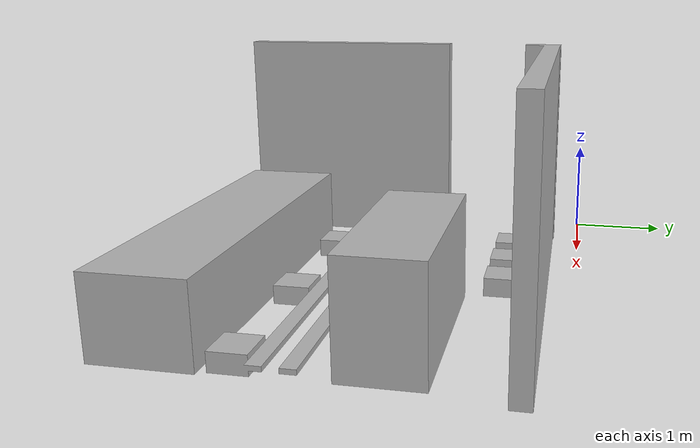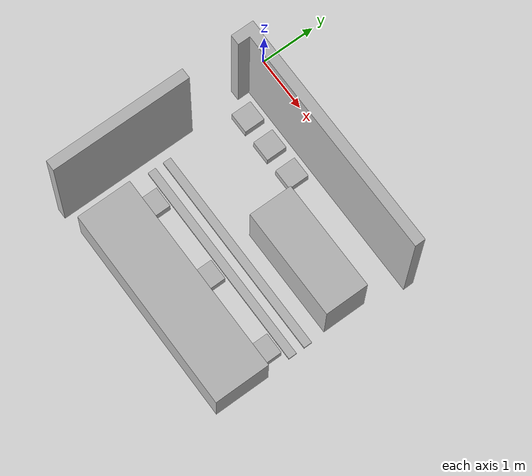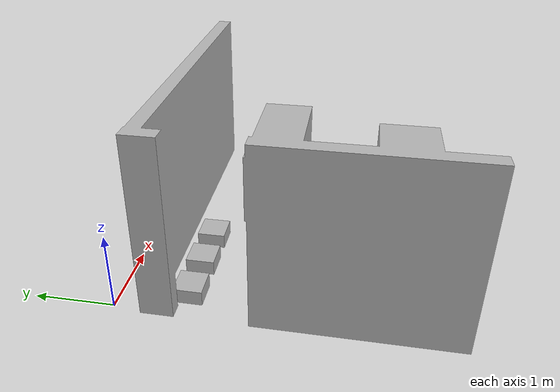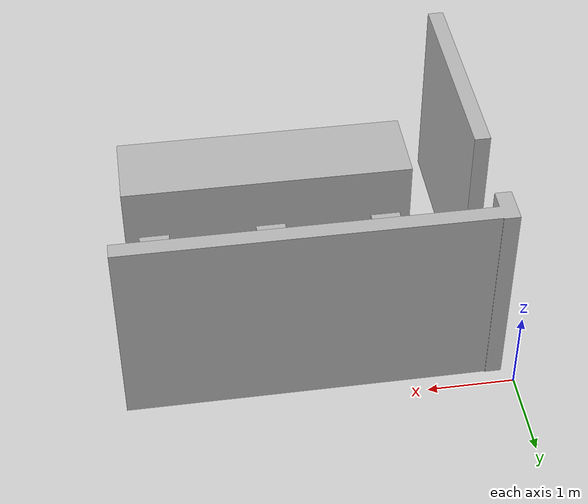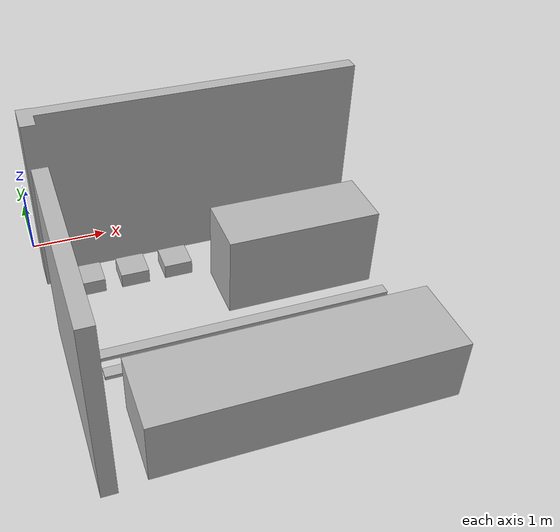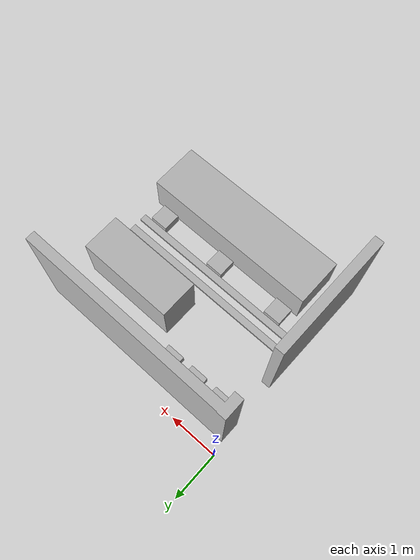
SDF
<?xml version="1.0" ?>

<sdf version="1.6">
  <world name="default">

     <scene>
      <ambient>0.8 0.8 0.8 1.0</ambient>
      <background>0 0 0</background>
      <grid>false</grid>
    </scene>

  <gui>
      <camera name="gui_camera">
        <pose>2.2459771090493055 -21.514917957137502 10 0 0.6 1.57</pose>
      </camera>
      <plugin name="toggle_charging" filename="libtoggle_charging.so" />
    </gui>

    <include>
      <uri>model://sun</uri>
    </include>

    <include>
      <uri>model://box_restaurant_routes</uri>
      <pose>1.44 -1.65 -0.1 0 0 0</pose>
    </include>

    <include>
      <uri>model://box_restaurant</uri>
      <pose>1.44 -1.65 -0.1 0 0 0</pose>
    </include>

    <rmf_charger_waypoints name="charger_waypoints">
      <rmf_vertex name="box_bot_1_charging_station" x="0.5" y="-1.52265347520784" level="L1" />
      <rmf_vertex name="box_bot_2_charging_station" x="1.0" y="-1.52265347520784" level="L1" />
      <rmf_vertex name="box_bot_3_charging_station" x="1.6" y="-1.52265347520784" level="L1" />
    </rmf_charger_waypoints>

  </world>
</sdf>

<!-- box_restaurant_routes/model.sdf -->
<sdf version='1.6'>
  <model name='box_restaurant_routes'>
    <link name='link_1_box_restaurant_routes'>
         <visual name='visual_box_restaurant_routes'>
        <pose frame=''>0 0 0 0 -0 0</pose>
        <geometry>
          <mesh>
            <uri>model://box_restaurant_routes/meshes/box_restaurant_routes.stl</uri>
            <scale>0.1 0.1 0.1</scale>
          </mesh>
        </geometry>
      </visual>
    </link>

    <static>1</static>
    <allow_auto_disable>1</allow_auto_disable>
  </model>
</sdf>

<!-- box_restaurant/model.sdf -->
<sdf version='1.6'>
  <model name='box_restaurant'>
    <link name='link_1'>
         <visual name='visual'>
        <pose frame=''>0 0 0 0 -0 0</pose>
        <geometry>
          <mesh>
            <uri>model://box_restaurant/meshes/box_restaurant.dae</uri>
            <scale>0.1 0.1 0.1</scale>
          </mesh>
        </geometry>
        <cast_shadows>0</cast_shadows>
        <transparency>0</transparency>
      </visual>
      <collision name='collision'>
        <laser_retro>0</laser_retro>
        <max_contacts>10</max_contacts>
        <pose frame=''>0 0 0 0 -0 0</pose>
        <geometry>
          <mesh>
            <uri>model://box_restaurant/meshes/box_restaurant.dae</uri>
            <scale>0.1 0.1 0.1</scale>
          </mesh>
        </geometry>
     </collision>
    </link>

    <static>1</static>
    <allow_auto_disable>1</allow_auto_disable>
  </model>
</sdf>
